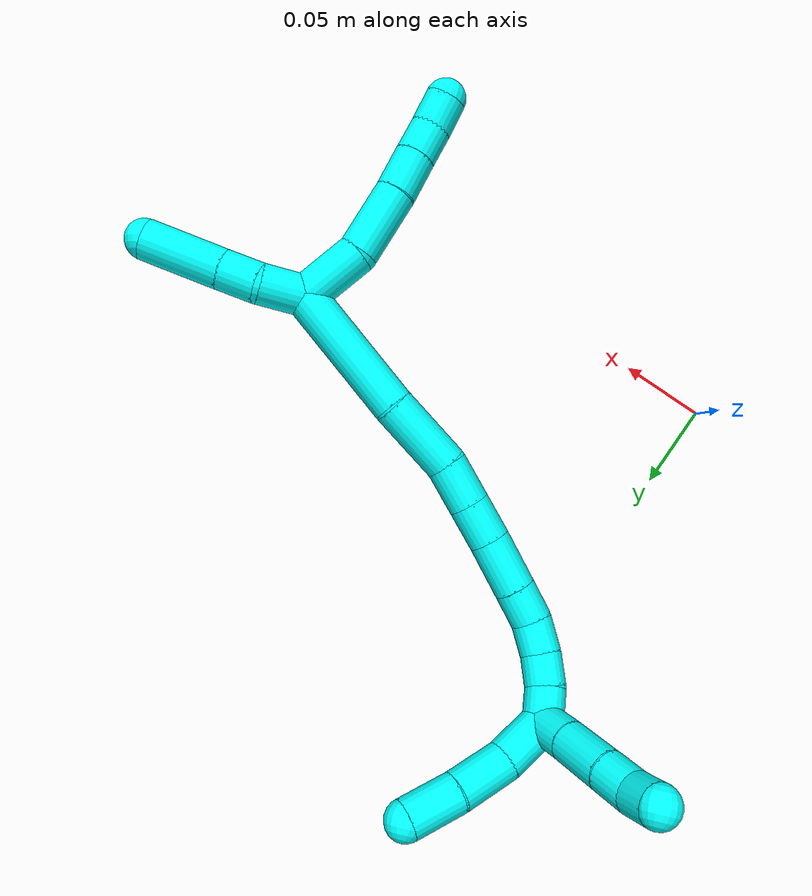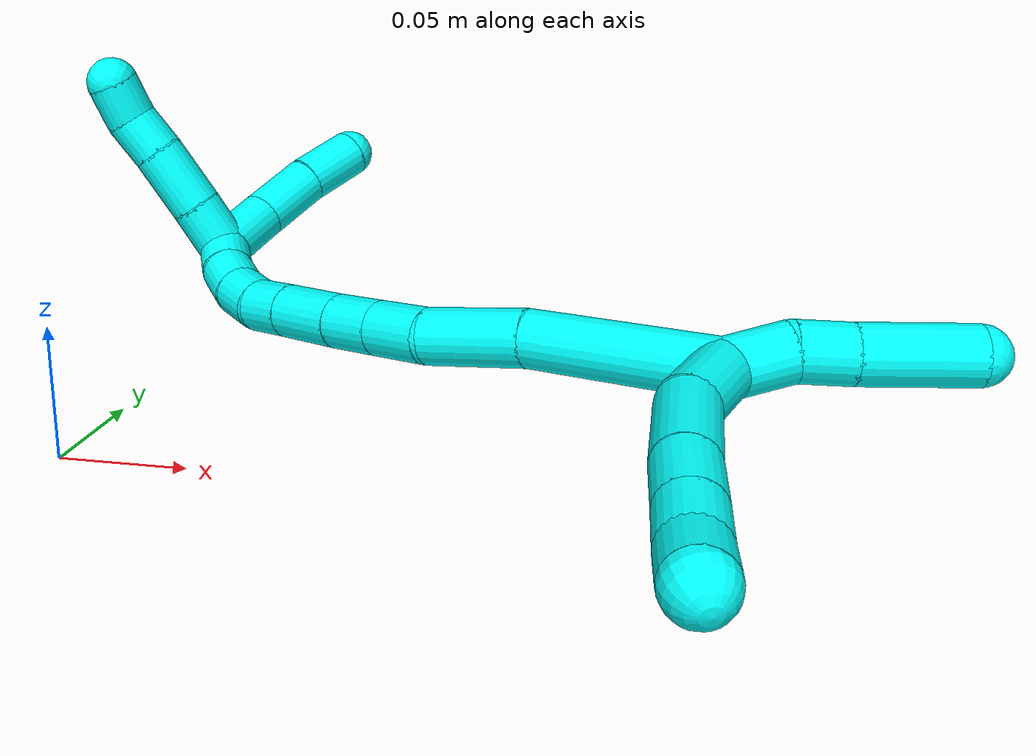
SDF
<sdf version="1.7">
 <world name="default">
  <model name="3">
   <static>0</static>
   <link name="3">
    <collision name="collision-cylinder-e_1_2_8">
     <pose>-0.012331 -0.002991 -0.015735 2.95373 -0.656115 -2.60153</pose>
     <geometry><cylinder><radius>0.0125</radius><length>0.040427</length></cylinder></geometry>
     <surface>
      <friction><ode><mu>1.16</mu><mu2>1.16</mu2><slip1>0</slip1><slip2>0</slip2></ode></friction>
      <contact><ode><kp>1e+06</kp><kd>1</kd><max_vel>0</max_vel><min_depth>0.001</min_depth></ode></contact>
     </surface>
    </collision>
    <visual name="visual-cylinder-e_1_2_8">
     <pose>-0.012331 -0.002991 -0.015735 2.95373 -0.656115 -2.60153</pose>
     <geometry><cylinder><radius>0.0125</radius><length>0.040427</length></cylinder></geometry>
     <material><ambient>0.003922 1 0.996078 1</ambient></material>
    </visual>
    <collision name="collision-cylinder-e_2_8_9">
     <pose>-0.031374 -0.009285 -0.051531 2.97845 -0.318843 -2.20082</pose>
     <geometry><cylinder><radius>0.0125</radius><length>0.042821</length></cylinder></geometry>
     <surface>
      <friction><ode><mu>1.16</mu><mu2>1.16</mu2><slip1>0</slip1><slip2>0</slip2></ode></friction>
      <contact><ode><kp>1e+06</kp><kd>1</kd><max_vel>0</max_vel><min_depth>0.001</min_depth></ode></contact>
     </surface>
    </collision>
    <visual name="visual-cylinder-e_2_8_9">
     <pose>-0.031374 -0.009285 -0.051531 2.97845 -0.318843 -2.20082</pose>
     <geometry><cylinder><radius>0.0125</radius><length>0.042821</length></cylinder></geometry>
     <material><ambient>0.003922 1 0.996078 1</ambient></material>
    </visual>
    <collision name="collision-cylinder-e_3_9_10">
     <pose>-0.041173 -0.014255 -0.084031 3.00828 -0.241202 -2.13464</pose>
     <geometry><cylinder><radius>0.0125</radius><length>0.025849</length></cylinder></geometry>
     <surface>
      <friction><ode><mu>1.16</mu><mu2>1.16</mu2><slip1>0</slip1><slip2>0</slip2></ode></friction>
      <contact><ode><kp>1e+06</kp><kd>1</kd><max_vel>0</max_vel><min_depth>0.001</min_depth></ode></contact>
     </surface>
    </collision>
    <visual name="visual-cylinder-e_3_9_10">
     <pose>-0.041173 -0.014255 -0.084031 3.00828 -0.241202 -2.13464</pose>
     <geometry><cylinder><radius>0.0125</radius><length>0.025849</length></cylinder></geometry>
     <material><ambient>0.003922 1 0.996078 1</ambient></material>
    </visual>
    <collision name="collision-cylinder-e_4_10_11">
     <pose>-0.046821 -0.017175 -0.106363 3.01575 -0.251467 -2.21678</pose>
     <geometry><cylinder><radius>0.0125</radius><length>0.020589</length></cylinder></geometry>
     <surface>
      <friction><ode><mu>1.16</mu><mu2>1.16</mu2><slip1>0</slip1><slip2>0</slip2></ode></friction>
      <contact><ode><kp>1e+06</kp><kd>1</kd><max_vel>0</max_vel><min_depth>0.001</min_depth></ode></contact>
     </surface>
    </collision>
    <visual name="visual-cylinder-e_4_10_11">
     <pose>-0.046821 -0.017175 -0.106363 3.01575 -0.251467 -2.21678</pose>
     <geometry><cylinder><radius>0.0125</radius><length>0.020589</length></cylinder></geometry>
     <material><ambient>0.003922 1 0.996078 1</ambient></material>
    </visual>
    <collision name="collision-cylinder-e_5_11_6">
     <pose>-0.0519 -0.021126 -0.125717 2.86365 -0.250463 -1.46568</pose>
     <geometry><cylinder><radius>0.0125</radius><length>0.020314</length></cylinder></geometry>
     <surface>
      <friction><ode><mu>1.16</mu><mu2>1.16</mu2><slip1>0</slip1><slip2>0</slip2></ode></friction>
      <contact><ode><kp>1e+06</kp><kd>1</kd><max_vel>0</max_vel><min_depth>0.001</min_depth></ode></contact>
     </surface>
    </collision>
    <visual name="visual-cylinder-e_5_11_6">
     <pose>-0.0519 -0.021126 -0.125717 2.86365 -0.250463 -1.46568</pose>
     <geometry><cylinder><radius>0.0125</radius><length>0.020314</length></cylinder></geometry>
     <material><ambient>0.003922 1 0.996078 1</ambient></material>
    </visual>
    <collision name="collision-cylinder-e_1_2_12">
     <pose>0.013182 -0.003864 0.000879 1.34714 1.27879 1.07119</pose>
     <geometry><cylinder><radius>0.0125</radius><length>0.027529</length></cylinder></geometry>
     <surface>
      <friction><ode><mu>1.16</mu><mu2>1.16</mu2><slip1>0</slip1><slip2>0</slip2></ode></friction>
      <contact><ode><kp>1e+06</kp><kd>1</kd><max_vel>0</max_vel><min_depth>0.001</min_depth></ode></contact>
     </surface>
    </collision>
    <visual name="visual-cylinder-e_1_2_12">
     <pose>0.013182 -0.003864 0.000879 1.34714 1.27879 1.07119</pose>
     <geometry><cylinder><radius>0.0125</radius><length>0.027529</length></cylinder></geometry>
     <material><ambient>0.003922 1 0.996078 1</ambient></material>
    </visual>
    <collision name="collision-cylinder-e_2_12_13">
     <pose>0.037954 -0.008447 0.000165 2.71727 1.42109 2.65102</pose>
     <geometry><cylinder><radius>0.0125</radius><length>0.023442</length></cylinder></geometry>
     <surface>
      <friction><ode><mu>1.16</mu><mu2>1.16</mu2><slip1>0</slip1><slip2>0</slip2></ode></friction>
      <contact><ode><kp>1e+06</kp><kd>1</kd><max_vel>0</max_vel><min_depth>0.001</min_depth></ode></contact>
     </surface>
    </collision>
    <visual name="visual-cylinder-e_2_12_13">
     <pose>0.037954 -0.008447 0.000165 2.71727 1.42109 2.65102</pose>
     <geometry><cylinder><radius>0.0125</radius><length>0.023442</length></cylinder></geometry>
     <material><ambient>0.003922 1 0.996078 1</ambient></material>
    </visual>
    <collision name="collision-cylinder-e_3_13_5">
     <pose>0.073712 -0.011715 -0.004649 2.47233 1.40248 2.36036</pose>
     <geometry><cylinder><radius>0.0125</radius><length>0.049029</length></cylinder></geometry>
     <surface>
      <friction><ode><mu>1.16</mu><mu2>1.16</mu2><slip1>0</slip1><slip2>0</slip2></ode></friction>
      <contact><ode><kp>1e+06</kp><kd>1</kd><max_vel>0</max_vel><min_depth>0.001</min_depth></ode></contact>
     </surface>
    </collision>
    <visual name="visual-cylinder-e_3_13_5">
     <pose>0.073712 -0.011715 -0.004649 2.47233 1.40248 2.36036</pose>
     <geometry><cylinder><radius>0.0125</radius><length>0.049029</length></cylinder></geometry>
     <material><ambient>0.003922 1 0.996078 1</ambient></material>
    </visual>
    <collision name="collision-cylinder-e_1_2_14">
     <pose>-0.032544 0.01039 0.024065 -0.407571 -0.892753 0.197166</pose>
     <geometry><cylinder><radius>0.0125</radius><length>0.083575</length></cylinder></geometry>
     <surface>
      <friction><ode><mu>1.16</mu><mu2>1.16</mu2><slip1>0</slip1><slip2>0</slip2></ode></friction>
      <contact><ode><kp>1e+06</kp><kd>1</kd><max_vel>0</max_vel><min_depth>0.001</min_depth></ode></contact>
     </surface>
    </collision>
    <visual name="visual-cylinder-e_1_2_14">
     <pose>-0.032544 0.01039 0.024065 -0.407571 -0.892753 0.197166</pose>
     <geometry><cylinder><radius>0.0125</radius><length>0.083575</length></cylinder></geometry>
     <material><ambient>0.003922 1 0.996078 1</ambient></material>
    </visual>
    <collision name="collision-cylinder-e_2_14_15">
     <pose>-0.084022 0.028825 0.059827 -0.602506 -0.927408 0.308288</pose>
     <geometry><cylinder><radius>0.0125</radius><length>0.047331</length></cylinder></geometry>
     <surface>
      <friction><ode><mu>1.16</mu><mu2>1.16</mu2><slip1>0</slip1><slip2>0</slip2></ode></friction>
      <contact><ode><kp>1e+06</kp><kd>1</kd><max_vel>0</max_vel><min_depth>0.001</min_depth></ode></contact>
     </surface>
    </collision>
    <visual name="visual-cylinder-e_2_14_15">
     <pose>-0.084022 0.028825 0.059827 -0.602506 -0.927408 0.308288</pose>
     <geometry><cylinder><radius>0.0125</radius><length>0.047331</length></cylinder></geometry>
     <material><ambient>0.003922 1 0.996078 1</ambient></material>
    </visual>
    <collision name="collision-cylinder-e_3_15_16">
     <pose>-0.112111 0.041399 0.080835 -0.452649 -0.724037 0.17397</pose>
     <geometry><cylinder><radius>0.0125</radius><length>0.027641</length></cylinder></geometry>
     <surface>
      <friction><ode><mu>1.16</mu><mu2>1.16</mu2><slip1>0</slip1><slip2>0</slip2></ode></friction>
      <contact><ode><kp>1e+06</kp><kd>1</kd><max_vel>0</max_vel><min_depth>0.001</min_depth></ode></contact>
     </surface>
    </collision>
    <visual name="visual-cylinder-e_3_15_16">
     <pose>-0.112111 0.041399 0.080835 -0.452649 -0.724037 0.17397</pose>
     <geometry><cylinder><radius>0.0125</radius><length>0.027641</length></cylinder></geometry>
     <material><ambient>0.003922 1 0.996078 1</ambient></material>
    </visual>
    <collision name="collision-cylinder-e_4_16_17">
     <pose>-0.129587 0.050021 0.098646 -0.448847 -0.72278 0.172141</pose>
     <geometry><cylinder><radius>0.0125</radius><length>0.02516</length></cylinder></geometry>
     <surface>
      <friction><ode><mu>1.16</mu><mu2>1.16</mu2><slip1>0</slip1><slip2>0</slip2></ode></friction>
      <contact><ode><kp>1e+06</kp><kd>1</kd><max_vel>0</max_vel><min_depth>0.001</min_depth></ode></contact>
     </surface>
    </collision>
    <visual name="visual-cylinder-e_4_16_17">
     <pose>-0.129587 0.050021 0.098646 -0.448847 -0.72278 0.172141</pose>
     <geometry><cylinder><radius>0.0125</radius><length>0.02516</length></cylinder></geometry>
     <material><ambient>0.003922 1 0.996078 1</ambient></material>
    </visual>
    <collision name="collision-cylinder-e_5_17_18">
     <pose>-0.148552 0.059328 0.11874 -0.422516 -0.697089 0.155545</pose>
     <geometry><cylinder><radius>0.0125</radius><length>0.03316</length></cylinder></geometry>
     <surface>
      <friction><ode><mu>1.16</mu><mu2>1.16</mu2><slip1>0</slip1><slip2>0</slip2></ode></friction>
      <contact><ode><kp>1e+06</kp><kd>1</kd><max_vel>0</max_vel><min_depth>0.001</min_depth></ode></contact>
     </surface>
    </collision>
    <visual name="visual-cylinder-e_5_17_18">
     <pose>-0.148552 0.059328 0.11874 -0.422516 -0.697089 0.155545</pose>
     <geometry><cylinder><radius>0.0125</radius><length>0.03316</length></cylinder></geometry>
     <material><ambient>0.003922 1 0.996078 1</ambient></material>
    </visual>
    <collision name="collision-cylinder-e_6_18_19">
     <pose>-0.166251 0.068174 0.138075 -0.438852 -0.689797 0.1599</pose>
     <geometry><cylinder><radius>0.0125</radius><length>0.022171</length></cylinder></geometry>
     <surface>
      <friction><ode><mu>1.16</mu><mu2>1.16</mu2><slip1>0</slip1><slip2>0</slip2></ode></friction>
      <contact><ode><kp>1e+06</kp><kd>1</kd><max_vel>0</max_vel><min_depth>0.001</min_depth></ode></contact>
     </surface>
    </collision>
    <visual name="visual-cylinder-e_6_18_19">
     <pose>-0.166251 0.068174 0.138075 -0.438852 -0.689797 0.1599</pose>
     <geometry><cylinder><radius>0.0125</radius><length>0.022171</length></cylinder></geometry>
     <material><ambient>0.003922 1 0.996078 1</ambient></material>
    </visual>
    <collision name="collision-cylinder-e_7_19_20">
     <pose>-0.178206 0.073562 0.154806 -0.192729 -0.491228 0.048453</pose>
     <geometry><cylinder><radius>0.0125</radius><length>0.020775</length></cylinder></geometry>
     <surface>
      <friction><ode><mu>1.16</mu><mu2>1.16</mu2><slip1>0</slip1><slip2>0</slip2></ode></friction>
      <contact><ode><kp>1e+06</kp><kd>1</kd><max_vel>0</max_vel><min_depth>0.001</min_depth></ode></contact>
     </surface>
    </collision>
    <visual name="visual-cylinder-e_7_19_20">
     <pose>-0.178206 0.073562 0.154806 -0.192729 -0.491228 0.048453</pose>
     <geometry><cylinder><radius>0.0125</radius><length>0.020775</length></cylinder></geometry>
     <material><ambient>0.003922 1 0.996078 1</ambient></material>
    </visual>
    <collision name="collision-cylinder-e_8_20_21">
     <pose>-0.186433 0.075339 0.173254 -0.002421 -0.33827 0.000413</pose>
     <geometry><cylinder><radius>0.0125</radius><length>0.020054</length></cylinder></geometry>
     <surface>
      <friction><ode><mu>1.16</mu><mu2>1.16</mu2><slip1>0</slip1><slip2>0</slip2></ode></friction>
      <contact><ode><kp>1e+06</kp><kd>1</kd><max_vel>0</max_vel><min_depth>0.001</min_depth></ode></contact>
     </surface>
    </collision>
    <visual name="visual-cylinder-e_8_20_21">
     <pose>-0.186433 0.075339 0.173254 -0.002421 -0.33827 0.000413</pose>
     <geometry><cylinder><radius>0.0125</radius><length>0.020054</length></cylinder></geometry>
     <material><ambient>0.003922 1 0.996078 1</ambient></material>
    </visual>
    <collision name="collision-cylinder-e_9_21_1">
     <pose>-0.190854 0.074675 0.192697 0.068672 -0.108754 -0.003739</pose>
     <geometry><cylinder><radius>0.0125</radius><length>0.020133</length></cylinder></geometry>
     <surface>
      <friction><ode><mu>1.16</mu><mu2>1.16</mu2><slip1>0</slip1><slip2>0</slip2></ode></friction>
      <contact><ode><kp>1e+06</kp><kd>1</kd><max_vel>0</max_vel><min_depth>0.001</min_depth></ode></contact>
     </surface>
    </collision>
    <visual name="visual-cylinder-e_9_21_1">
     <pose>-0.190854 0.074675 0.192697 0.068672 -0.108754 -0.003739</pose>
     <geometry><cylinder><radius>0.0125</radius><length>0.020133</length></cylinder></geometry>
     <material><ambient>0.003922 1 0.996078 1</ambient></material>
    </visual>
    <collision name="collision-cylinder-e_1_1_22">
     <pose>-0.182683 0.071794 0.216049 0.162721 0.59972 0.050411</pose>
     <geometry><cylinder><radius>0.0125</radius><length>0.032823</length></cylinder></geometry>
     <surface>
      <friction><ode><mu>1.16</mu><mu2>1.16</mu2><slip1>0</slip1><slip2>0</slip2></ode></friction>
      <contact><ode><kp>1e+06</kp><kd>1</kd><max_vel>0</max_vel><min_depth>0.001</min_depth></ode></contact>
     </surface>
    </collision>
    <visual name="visual-cylinder-e_1_1_22">
     <pose>-0.182683 0.071794 0.216049 0.162721 0.59972 0.050411</pose>
     <geometry><cylinder><radius>0.0125</radius><length>0.032823</length></cylinder></geometry>
     <material><ambient>0.003922 1 0.996078 1</ambient></material>
    </visual>
    <collision name="collision-cylinder-e_2_22_23">
     <pose>-0.161796 0.064382 0.240982 0.423744 0.74174 0.166901</pose>
     <geometry><cylinder><radius>0.0125</radius><length>0.034415</length></cylinder></geometry>
     <surface>
      <friction><ode><mu>1.16</mu><mu2>1.16</mu2><slip1>0</slip1><slip2>0</slip2></ode></friction>
      <contact><ode><kp>1e+06</kp><kd>1</kd><max_vel>0</max_vel><min_depth>0.001</min_depth></ode></contact>
     </surface>
    </collision>
    <visual name="visual-cylinder-e_2_22_23">
     <pose>-0.161796 0.064382 0.240982 0.423744 0.74174 0.166901</pose>
     <geometry><cylinder><radius>0.0125</radius><length>0.034415</length></cylinder></geometry>
     <material><ambient>0.003922 1 0.996078 1</ambient></material>
    </visual>
    <collision name="collision-cylinder-e_3_23_4">
     <pose>-0.138012 0.055309 0.262825 0.359025 0.836378 0.16094</pose>
     <geometry><cylinder><radius>0.0125</radius><length>0.032762</length></cylinder></geometry>
     <surface>
      <friction><ode><mu>1.16</mu><mu2>1.16</mu2><slip1>0</slip1><slip2>0</slip2></ode></friction>
      <contact><ode><kp>1e+06</kp><kd>1</kd><max_vel>0</max_vel><min_depth>0.001</min_depth></ode></contact>
     </surface>
    </collision>
    <visual name="visual-cylinder-e_3_23_4">
     <pose>-0.138012 0.055309 0.262825 0.359025 0.836378 0.16094</pose>
     <geometry><cylinder><radius>0.0125</radius><length>0.032762</length></cylinder></geometry>
     <material><ambient>0.003922 1 0.996078 1</ambient></material>
    </visual>
    <collision name="collision-cylinder-e_1_1_24">
     <pose>-0.199351 0.064363 0.206802 1.16623 -0.615542 -0.413367</pose>
     <geometry><cylinder><radius>0.0125</radius><length>0.02565</length></cylinder></geometry>
     <surface>
      <friction><ode><mu>1.16</mu><mu2>1.16</mu2><slip1>0</slip1><slip2>0</slip2></ode></friction>
      <contact><ode><kp>1e+06</kp><kd>1</kd><max_vel>0</max_vel><min_depth>0.001</min_depth></ode></contact>
     </surface>
    </collision>
    <visual name="visual-cylinder-e_1_1_24">
     <pose>-0.199351 0.064363 0.206802 1.16623 -0.615542 -0.413367</pose>
     <geometry><cylinder><radius>0.0125</radius><length>0.02565</length></cylinder></geometry>
     <material><ambient>0.003922 1 0.996078 1</ambient></material>
    </visual>
    <collision name="collision-cylinder-e_2_24_25">
     <pose>-0.216492 0.043053 0.21674 1.10889 -0.640878 -0.405378</pose>
     <geometry><cylinder><radius>0.0125</radius><length>0.032564</length></cylinder></geometry>
     <surface>
      <friction><ode><mu>1.16</mu><mu2>1.16</mu2><slip1>0</slip1><slip2>0</slip2></ode></friction>
      <contact><ode><kp>1e+06</kp><kd>1</kd><max_vel>0</max_vel><min_depth>0.001</min_depth></ode></contact>
     </surface>
    </collision>
    <visual name="visual-cylinder-e_2_24_25">
     <pose>-0.216492 0.043053 0.21674 1.10889 -0.640878 -0.405378</pose>
     <geometry><cylinder><radius>0.0125</radius><length>0.032564</length></cylinder></geometry>
     <material><ambient>0.003922 1 0.996078 1</ambient></material>
    </visual>
    <collision name="collision-cylinder-e_3_25_26">
     <pose>-0.233104 0.024337 0.226524 1.05706 -0.705442 -0.423472</pose>
     <geometry><cylinder><radius>0.0125</radius><length>0.021214</length></cylinder></geometry>
     <surface>
      <friction><ode><mu>1.16</mu><mu2>1.16</mu2><slip1>0</slip1><slip2>0</slip2></ode></friction>
      <contact><ode><kp>1e+06</kp><kd>1</kd><max_vel>0</max_vel><min_depth>0.001</min_depth></ode></contact>
     </surface>
    </collision>
    <visual name="visual-cylinder-e_3_25_26">
     <pose>-0.233104 0.024337 0.226524 1.05706 -0.705442 -0.423472</pose>
     <geometry><cylinder><radius>0.0125</radius><length>0.021214</length></cylinder></geometry>
     <material><ambient>0.003922 1 0.996078 1</ambient></material>
    </visual>
    <collision name="collision-cylinder-e_4_26_3">
     <pose>-0.244632 0.008339 0.23244 1.35689 -0.469223 -0.380669</pose>
     <geometry><cylinder><radius>0.0125</radius><length>0.020572</length></cylinder></geometry>
     <surface>
      <friction><ode><mu>1.16</mu><mu2>1.16</mu2><slip1>0</slip1><slip2>0</slip2></ode></friction>
      <contact><ode><kp>1e+06</kp><kd>1</kd><max_vel>0</max_vel><min_depth>0.001</min_depth></ode></contact>
     </surface>
    </collision>
    <visual name="visual-cylinder-e_4_26_3">
     <pose>-0.244632 0.008339 0.23244 1.35689 -0.469223 -0.380669</pose>
     <geometry><cylinder><radius>0.0125</radius><length>0.020572</length></cylinder></geometry>
     <material><ambient>0.003922 1 0.996078 1</ambient></material>
    </visual>
    <collision name="collision-sphere-3">
     <pose>-0.249284 -0.000626 0.234388 0 -0 0</pose>
     <geometry><sphere><radius>0.0125</radius></sphere></geometry>
     <surface>
      <friction><ode><mu>1.16</mu><mu2>1.16</mu2><slip1>0</slip1><slip2>0</slip2></ode></friction>
      <contact><ode><kp>1e+06</kp><kd>1</kd><max_vel>0</max_vel><min_depth>0.001</min_depth></ode></contact>
     </surface>
    </collision>
    <visual name="visual-sphere-3">
     <pose>-0.249284 -0.000626 0.234388 0 -0 0</pose>
     <geometry><sphere><radius>0.0125</radius></sphere></geometry>
     <material><ambient>0.003922 1 0.996078 1</ambient></material>
    </visual>
    <collision name="collision-sphere-26">
     <pose>-0.239981 0.017304 0.230493 0 -0 0</pose>
     <geometry><sphere><radius>0.0125</radius></sphere></geometry>
     <surface>
      <friction><ode><mu>1.16</mu><mu2>1.16</mu2><slip1>0</slip1><slip2>0</slip2></ode></friction>
      <contact><ode><kp>1e+06</kp><kd>1</kd><max_vel>0</max_vel><min_depth>0.001</min_depth></ode></contact>
     </surface>
    </collision>
    <visual name="visual-sphere-26">
     <pose>-0.239981 0.017304 0.230493 0 -0 0</pose>
     <geometry><sphere><radius>0.0125</radius></sphere></geometry>
     <material><ambient>0.003922 1 0.996078 1</ambient></material>
    </visual>
    <collision name="collision-sphere-25">
     <pose>-0.226227 0.03137 0.222556 0 -0 0</pose>
     <geometry><sphere><radius>0.0125</radius></sphere></geometry>
     <surface>
      <friction><ode><mu>1.16</mu><mu2>1.16</mu2><slip1>0</slip1><slip2>0</slip2></ode></friction>
      <contact><ode><kp>1e+06</kp><kd>1</kd><max_vel>0</max_vel><min_depth>0.001</min_depth></ode></contact>
     </surface>
    </collision>
    <visual name="visual-sphere-25">
     <pose>-0.226227 0.03137 0.222556 0 -0 0</pose>
     <geometry><sphere><radius>0.0125</radius></sphere></geometry>
     <material><ambient>0.003922 1 0.996078 1</ambient></material>
    </visual>
    <collision name="collision-sphere-24">
     <pose>-0.206757 0.054737 0.210923 0 -0 0</pose>
     <geometry><sphere><radius>0.0125</radius></sphere></geometry>
     <surface>
      <friction><ode><mu>1.16</mu><mu2>1.16</mu2><slip1>0</slip1><slip2>0</slip2></ode></friction>
      <contact><ode><kp>1e+06</kp><kd>1</kd><max_vel>0</max_vel><min_depth>0.001</min_depth></ode></contact>
     </surface>
    </collision>
    <visual name="visual-sphere-24">
     <pose>-0.206757 0.054737 0.210923 0 -0 0</pose>
     <geometry><sphere><radius>0.0125</radius></sphere></geometry>
     <material><ambient>0.003922 1 0.996078 1</ambient></material>
    </visual>
    <collision name="collision-sphere-4">
     <pose>-0.125854 0.051451 0.273103 0 -0 0</pose>
     <geometry><sphere><radius>0.0125</radius></sphere></geometry>
     <surface>
      <friction><ode><mu>1.16</mu><mu2>1.16</mu2><slip1>0</slip1><slip2>0</slip2></ode></friction>
      <contact><ode><kp>1e+06</kp><kd>1</kd><max_vel>0</max_vel><min_depth>0.001</min_depth></ode></contact>
     </surface>
    </collision>
    <visual name="visual-sphere-4">
     <pose>-0.125854 0.051451 0.273103 0 -0 0</pose>
     <geometry><sphere><radius>0.0125</radius></sphere></geometry>
     <material><ambient>0.003922 1 0.996078 1</ambient></material>
    </visual>
    <collision name="collision-sphere-23">
     <pose>-0.150171 0.059166 0.252547 0 -0 0</pose>
     <geometry><sphere><radius>0.0125</radius></sphere></geometry>
     <surface>
      <friction><ode><mu>1.16</mu><mu2>1.16</mu2><slip1>0</slip1><slip2>0</slip2></ode></friction>
      <contact><ode><kp>1e+06</kp><kd>1</kd><max_vel>0</max_vel><min_depth>0.001</min_depth></ode></contact>
     </surface>
    </collision>
    <visual name="visual-sphere-23">
     <pose>-0.150171 0.059166 0.252547 0 -0 0</pose>
     <geometry><sphere><radius>0.0125</radius></sphere></geometry>
     <material><ambient>0.003922 1 0.996078 1</ambient></material>
    </visual>
    <collision name="collision-sphere-22">
     <pose>-0.17342 0.069599 0.229418 0 -0 0</pose>
     <geometry><sphere><radius>0.0125</radius></sphere></geometry>
     <surface>
      <friction><ode><mu>1.16</mu><mu2>1.16</mu2><slip1>0</slip1><slip2>0</slip2></ode></friction>
      <contact><ode><kp>1e+06</kp><kd>1</kd><max_vel>0</max_vel><min_depth>0.001</min_depth></ode></contact>
     </surface>
    </collision>
    <visual name="visual-sphere-22">
     <pose>-0.17342 0.069599 0.229418 0 -0 0</pose>
     <geometry><sphere><radius>0.0125</radius></sphere></geometry>
     <material><ambient>0.003922 1 0.996078 1</ambient></material>
    </visual>
    <collision name="collision-sphere-1">
     <pose>-0.191946 0.073988 0.20268 0 -0 0</pose>
     <geometry><sphere><radius>0.0125</radius></sphere></geometry>
     <surface>
      <friction><ode><mu>1.16</mu><mu2>1.16</mu2><slip1>0</slip1><slip2>0</slip2></ode></friction>
      <contact><ode><kp>1e+06</kp><kd>1</kd><max_vel>0</max_vel><min_depth>0.001</min_depth></ode></contact>
     </surface>
    </collision>
    <visual name="visual-sphere-1">
     <pose>-0.191946 0.073988 0.20268 0 -0 0</pose>
     <geometry><sphere><radius>0.0125</radius></sphere></geometry>
     <material><ambient>0.003922 1 0.996078 1</ambient></material>
    </visual>
    <collision name="collision-sphere-21">
     <pose>-0.189761 0.075362 0.182713 0 -0 0</pose>
     <geometry><sphere><radius>0.0125</radius></sphere></geometry>
     <surface>
      <friction><ode><mu>1.16</mu><mu2>1.16</mu2><slip1>0</slip1><slip2>0</slip2></ode></friction>
      <contact><ode><kp>1e+06</kp><kd>1</kd><max_vel>0</max_vel><min_depth>0.001</min_depth></ode></contact>
     </surface>
    </collision>
    <visual name="visual-sphere-21">
     <pose>-0.189761 0.075362 0.182713 0 -0 0</pose>
     <geometry><sphere><radius>0.0125</radius></sphere></geometry>
     <material><ambient>0.003922 1 0.996078 1</ambient></material>
    </visual>
    <collision name="collision-sphere-6">
     <pose>-0.054418 -0.023826 -0.135179 0 -0 0</pose>
     <geometry><sphere><radius>0.0125</radius></sphere></geometry>
     <surface>
      <friction><ode><mu>1.16</mu><mu2>1.16</mu2><slip1>0</slip1><slip2>0</slip2></ode></friction>
      <contact><ode><kp>1e+06</kp><kd>1</kd><max_vel>0</max_vel><min_depth>0.001</min_depth></ode></contact>
     </surface>
    </collision>
    <visual name="visual-sphere-6">
     <pose>-0.054418 -0.023826 -0.135179 0 -0 0</pose>
     <geometry><sphere><radius>0.0125</radius></sphere></geometry>
     <material><ambient>0.003922 1 0.996078 1</ambient></material>
    </visual>
    <collision name="collision-sphere-11">
     <pose>-0.049383 -0.018426 -0.116255 0 -0 0</pose>
     <geometry><sphere><radius>0.0125</radius></sphere></geometry>
     <surface>
      <friction><ode><mu>1.16</mu><mu2>1.16</mu2><slip1>0</slip1><slip2>0</slip2></ode></friction>
      <contact><ode><kp>1e+06</kp><kd>1</kd><max_vel>0</max_vel><min_depth>0.001</min_depth></ode></contact>
     </surface>
    </collision>
    <visual name="visual-sphere-11">
     <pose>-0.049383 -0.018426 -0.116255 0 -0 0</pose>
     <geometry><sphere><radius>0.0125</radius></sphere></geometry>
     <material><ambient>0.003922 1 0.996078 1</ambient></material>
    </visual>
    <collision name="collision-sphere-10">
     <pose>-0.04426 -0.015923 -0.096471 0 -0 0</pose>
     <geometry><sphere><radius>0.0125</radius></sphere></geometry>
     <surface>
      <friction><ode><mu>1.16</mu><mu2>1.16</mu2><slip1>0</slip1><slip2>0</slip2></ode></friction>
      <contact><ode><kp>1e+06</kp><kd>1</kd><max_vel>0</max_vel><min_depth>0.001</min_depth></ode></contact>
     </surface>
    </collision>
    <visual name="visual-sphere-10">
     <pose>-0.04426 -0.015923 -0.096471 0 -0 0</pose>
     <geometry><sphere><radius>0.0125</radius></sphere></geometry>
     <material><ambient>0.003922 1 0.996078 1</ambient></material>
    </visual>
    <collision name="collision-sphere-9">
     <pose>-0.038085 -0.012587 -0.071592 0 -0 0</pose>
     <geometry><sphere><radius>0.0125</radius></sphere></geometry>
     <surface>
      <friction><ode><mu>1.16</mu><mu2>1.16</mu2><slip1>0</slip1><slip2>0</slip2></ode></friction>
      <contact><ode><kp>1e+06</kp><kd>1</kd><max_vel>0</max_vel><min_depth>0.001</min_depth></ode></contact>
     </surface>
    </collision>
    <visual name="visual-sphere-9">
     <pose>-0.038085 -0.012587 -0.071592 0 -0 0</pose>
     <geometry><sphere><radius>0.0125</radius></sphere></geometry>
     <material><ambient>0.003922 1 0.996078 1</ambient></material>
    </visual>
    <collision name="collision-sphere-2">
     <geometry><sphere><radius>0.0125</radius></sphere></geometry>
     <surface>
      <friction><ode><mu>1.16</mu><mu2>1.16</mu2><slip1>0</slip1><slip2>0</slip2></ode></friction>
      <contact><ode><kp>1e+06</kp><kd>1</kd><max_vel>0</max_vel><min_depth>0.001</min_depth></ode></contact>
     </surface>
    </collision>
    <visual name="visual-sphere-2">
     <geometry><sphere><radius>0.0125</radius></sphere></geometry>
     <material><ambient>0.003922 1 0.996078 1</ambient></material>
    </visual>
    <collision name="collision-sphere-19">
     <pose>-0.173306 0.071807 0.145816 0 -0 0</pose>
     <geometry><sphere><radius>0.0125</radius></sphere></geometry>
     <surface>
      <friction><ode><mu>1.16</mu><mu2>1.16</mu2><slip1>0</slip1><slip2>0</slip2></ode></friction>
      <contact><ode><kp>1e+06</kp><kd>1</kd><max_vel>0</max_vel><min_depth>0.001</min_depth></ode></contact>
     </surface>
    </collision>
    <visual name="visual-sphere-19">
     <pose>-0.173306 0.071807 0.145816 0 -0 0</pose>
     <geometry><sphere><radius>0.0125</radius></sphere></geometry>
     <material><ambient>0.003922 1 0.996078 1</ambient></material>
    </visual>
    <collision name="collision-sphere-8">
     <pose>-0.024662 -0.005982 -0.03147 0 -0 0</pose>
     <geometry><sphere><radius>0.0125</radius></sphere></geometry>
     <surface>
      <friction><ode><mu>1.16</mu><mu2>1.16</mu2><slip1>0</slip1><slip2>0</slip2></ode></friction>
      <contact><ode><kp>1e+06</kp><kd>1</kd><max_vel>0</max_vel><min_depth>0.001</min_depth></ode></contact>
     </surface>
    </collision>
    <visual name="visual-sphere-8">
     <pose>-0.024662 -0.005982 -0.03147 0 -0 0</pose>
     <geometry><sphere><radius>0.0125</radius></sphere></geometry>
     <material><ambient>0.003922 1 0.996078 1</ambient></material>
    </visual>
    <collision name="collision-sphere-12">
     <pose>0.026364 -0.007728 0.001758 0 -0 0</pose>
     <geometry><sphere><radius>0.0125</radius></sphere></geometry>
     <surface>
      <friction><ode><mu>1.16</mu><mu2>1.16</mu2><slip1>0</slip1><slip2>0</slip2></ode></friction>
      <contact><ode><kp>1e+06</kp><kd>1</kd><max_vel>0</max_vel><min_depth>0.001</min_depth></ode></contact>
     </surface>
    </collision>
    <visual name="visual-sphere-12">
     <pose>0.026364 -0.007728 0.001758 0 -0 0</pose>
     <geometry><sphere><radius>0.0125</radius></sphere></geometry>
     <material><ambient>0.003922 1 0.996078 1</ambient></material>
    </visual>
    <collision name="collision-sphere-13">
     <pose>0.049543 -0.009167 -0.001429 0 -0 0</pose>
     <geometry><sphere><radius>0.0125</radius></sphere></geometry>
     <surface>
      <friction><ode><mu>1.16</mu><mu2>1.16</mu2><slip1>0</slip1><slip2>0</slip2></ode></friction>
      <contact><ode><kp>1e+06</kp><kd>1</kd><max_vel>0</max_vel><min_depth>0.001</min_depth></ode></contact>
     </surface>
    </collision>
    <visual name="visual-sphere-13">
     <pose>0.049543 -0.009167 -0.001429 0 -0 0</pose>
     <geometry><sphere><radius>0.0125</radius></sphere></geometry>
     <material><ambient>0.003922 1 0.996078 1</ambient></material>
    </visual>
    <collision name="collision-sphere-5">
     <pose>0.09788 -0.014262 -0.00787 0 -0 0</pose>
     <geometry><sphere><radius>0.0125</radius></sphere></geometry>
     <surface>
      <friction><ode><mu>1.16</mu><mu2>1.16</mu2><slip1>0</slip1><slip2>0</slip2></ode></friction>
      <contact><ode><kp>1e+06</kp><kd>1</kd><max_vel>0</max_vel><min_depth>0.001</min_depth></ode></contact>
     </surface>
    </collision>
    <visual name="visual-sphere-5">
     <pose>0.09788 -0.014262 -0.00787 0 -0 0</pose>
     <geometry><sphere><radius>0.0125</radius></sphere></geometry>
     <material><ambient>0.003922 1 0.996078 1</ambient></material>
    </visual>
    <collision name="collision-sphere-14">
     <pose>-0.065088 0.02078 0.04813 0 -0 0</pose>
     <geometry><sphere><radius>0.0125</radius></sphere></geometry>
     <surface>
      <friction><ode><mu>1.16</mu><mu2>1.16</mu2><slip1>0</slip1><slip2>0</slip2></ode></friction>
      <contact><ode><kp>1e+06</kp><kd>1</kd><max_vel>0</max_vel><min_depth>0.001</min_depth></ode></contact>
     </surface>
    </collision>
    <visual name="visual-sphere-14">
     <pose>-0.065088 0.02078 0.04813 0 -0 0</pose>
     <geometry><sphere><radius>0.0125</radius></sphere></geometry>
     <material><ambient>0.003922 1 0.996078 1</ambient></material>
    </visual>
    <collision name="collision-sphere-15">
     <pose>-0.102956 0.036871 0.071524 0 -0 0</pose>
     <geometry><sphere><radius>0.0125</radius></sphere></geometry>
     <surface>
      <friction><ode><mu>1.16</mu><mu2>1.16</mu2><slip1>0</slip1><slip2>0</slip2></ode></friction>
      <contact><ode><kp>1e+06</kp><kd>1</kd><max_vel>0</max_vel><min_depth>0.001</min_depth></ode></contact>
     </surface>
    </collision>
    <visual name="visual-sphere-15">
     <pose>-0.102956 0.036871 0.071524 0 -0 0</pose>
     <geometry><sphere><radius>0.0125</radius></sphere></geometry>
     <material><ambient>0.003922 1 0.996078 1</ambient></material>
    </visual>
    <collision name="collision-sphere-16">
     <pose>-0.121266 0.045927 0.090145 0 -0 0</pose>
     <geometry><sphere><radius>0.0125</radius></sphere></geometry>
     <surface>
      <friction><ode><mu>1.16</mu><mu2>1.16</mu2><slip1>0</slip1><slip2>0</slip2></ode></friction>
      <contact><ode><kp>1e+06</kp><kd>1</kd><max_vel>0</max_vel><min_depth>0.001</min_depth></ode></contact>
     </surface>
    </collision>
    <visual name="visual-sphere-16">
     <pose>-0.121266 0.045927 0.090145 0 -0 0</pose>
     <geometry><sphere><radius>0.0125</radius></sphere></geometry>
     <material><ambient>0.003922 1 0.996078 1</ambient></material>
    </visual>
    <collision name="collision-sphere-17">
     <pose>-0.137908 0.054115 0.107146 0 -0 0</pose>
     <geometry><sphere><radius>0.0125</radius></sphere></geometry>
     <surface>
      <friction><ode><mu>1.16</mu><mu2>1.16</mu2><slip1>0</slip1><slip2>0</slip2></ode></friction>
      <contact><ode><kp>1e+06</kp><kd>1</kd><max_vel>0</max_vel><min_depth>0.001</min_depth></ode></contact>
     </surface>
    </collision>
    <visual name="visual-sphere-17">
     <pose>-0.137908 0.054115 0.107146 0 -0 0</pose>
     <geometry><sphere><radius>0.0125</radius></sphere></geometry>
     <material><ambient>0.003922 1 0.996078 1</ambient></material>
    </visual>
    <collision name="collision-sphere-18">
     <pose>-0.159197 0.06454 0.130334 0 -0 0</pose>
     <geometry><sphere><radius>0.0125</radius></sphere></geometry>
     <surface>
      <friction><ode><mu>1.16</mu><mu2>1.16</mu2><slip1>0</slip1><slip2>0</slip2></ode></friction>
      <contact><ode><kp>1e+06</kp><kd>1</kd><max_vel>0</max_vel><min_depth>0.001</min_depth></ode></contact>
     </surface>
    </collision>
    <visual name="visual-sphere-18">
     <pose>-0.159197 0.06454 0.130334 0 -0 0</pose>
     <geometry><sphere><radius>0.0125</radius></sphere></geometry>
     <material><ambient>0.003922 1 0.996078 1</ambient></material>
    </visual>
    <collision name="collision-sphere-20">
     <pose>-0.183106 0.075316 0.163796 0 -0 0</pose>
     <geometry><sphere><radius>0.0125</radius></sphere></geometry>
     <surface>
      <friction><ode><mu>1.16</mu><mu2>1.16</mu2><slip1>0</slip1><slip2>0</slip2></ode></friction>
      <contact><ode><kp>1e+06</kp><kd>1</kd><max_vel>0</max_vel><min_depth>0.001</min_depth></ode></contact>
     </surface>
    </collision>
    <visual name="visual-sphere-20">
     <pose>-0.183106 0.075316 0.163796 0 -0 0</pose>
     <geometry><sphere><radius>0.0125</radius></sphere></geometry>
     <material><ambient>0.003922 1 0.996078 1</ambient></material>
    </visual>
    <inertial>
     <pose>-0.094982 0.026978 0.084153 0 -0 0</pose>
     <mass>0.75</mass>
     <inertia><ixx>4e-05</ixx><ixy>0</ixy><ixz>0</ixz><iyy>0.000115</iyy><iyz>0</iyz><izz>5.4e-05</izz></inertia>
    </inertial>
   </link>
   <pose>0.235972 0.076776 0.024646 -1.27658 0.078325 0.376256</pose>
  </model>
 </world>
</sdf>
